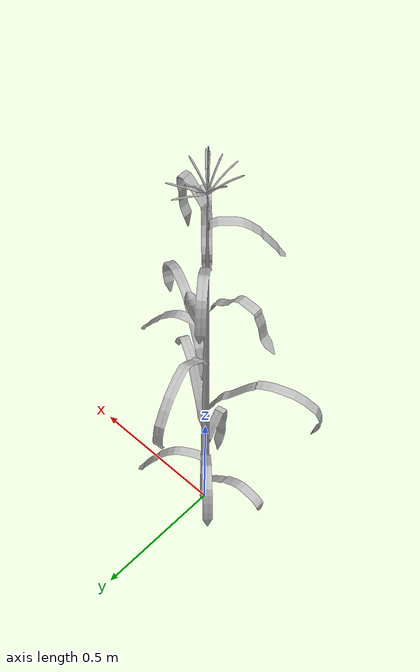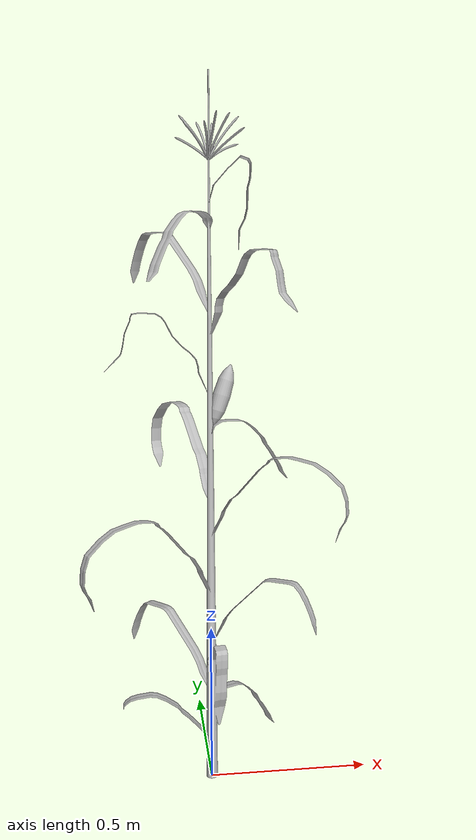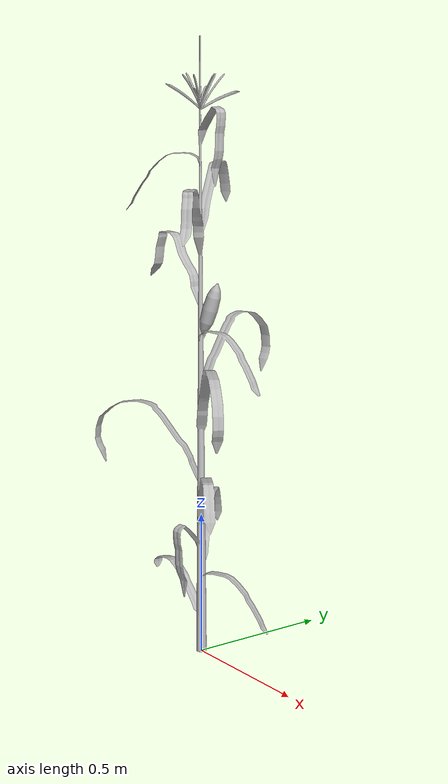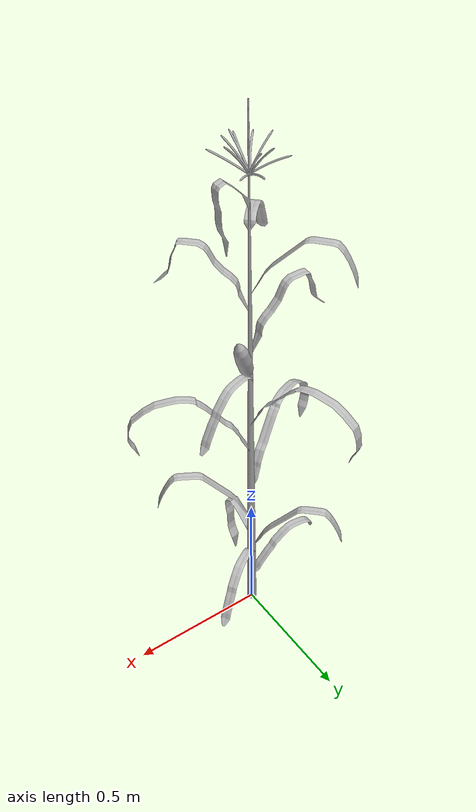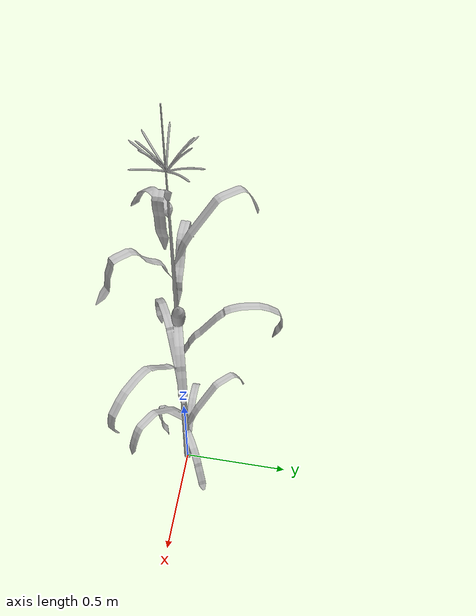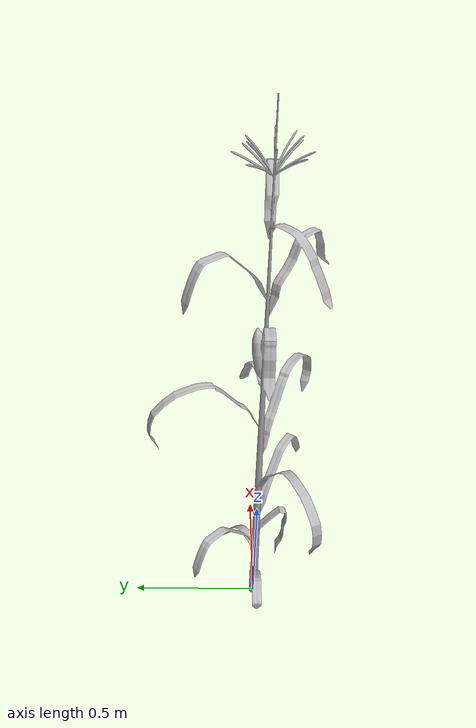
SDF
<?xml version="1.0" ?>
<sdf version="1.5">
  <model name="corn_stalk2">
    <static>true</static>
    <link name="corn_stalk2_link">
      <pose>0 0 0 0 0 0</pose>
        <collision name="collision">
        <geometry>
          <mesh>
            <scale>1 1 1</scale>
              <uri>model://corn_type2/meshes/model.stl</uri>
          </mesh>
        </geometry>
      </collision>
      <visual name="corn_stalk2_visual">
        <cast_shadows>true</cast_shadows>
        <geometry>
          <mesh>
              <uri>model://corn_type2/meshes/model.stl</uri>
            <scale>1 1 1</scale>
          </mesh>
        </geometry>
        <material>
          <script>
            <uri>model://corn_type2/materials/scripts</uri>
            <uri>model://corn_type2/materials/textures</uri>
            <name>corn_type2/Diffuse</name>
          </script>
        </material>
      </visual>
    </link>
  </model>
</sdf>
